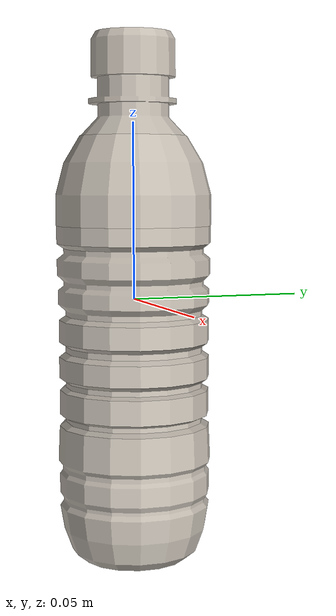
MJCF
<mujoco model="bottled_water_12">
  <asset>
    <mesh file="visual/model_normalized_0.obj" name="model_normalized_0_vis" scale="0.15 0.15 0.15" refquat="1.0 0.0 0.0 0.0"/>
    <mesh file="visual/model_normalized_1.obj" name="model_normalized_1_vis" scale="0.15 0.15 0.15" refquat="1.0 0.0 0.0 0.0"/>
    <mesh file="visual/model_normalized_2.obj" name="model_normalized_2_vis" scale="0.15 0.15 0.15" refquat="1.0 0.0 0.0 0.0"/>
    <mesh file="visual/model_normalized_3.obj" name="model_normalized_3_vis" scale="0.15 0.15 0.15" refquat="1.0 0.0 0.0 0.0"/>
    <mesh file="collision/model_normalized_collision_22.obj" name="model_normalized_collision_22._coll" scale="0.15 0.15 0.15" refquat="1.0 0.0 0.0 0.0"/>
    <mesh file="collision/model_normalized_collision_23.obj" name="model_normalized_collision_23._coll" scale="0.15 0.15 0.15" refquat="1.0 0.0 0.0 0.0"/>
    <mesh file="collision/model_normalized_collision_21.obj" name="model_normalized_collision_21._coll" scale="0.15 0.15 0.15" refquat="1.0 0.0 0.0 0.0"/>
    <mesh file="collision/model_normalized_collision_20.obj" name="model_normalized_collision_20._coll" scale="0.15 0.15 0.15" refquat="1.0 0.0 0.0 0.0"/>
    <mesh file="collision/model_normalized_collision_24.obj" name="model_normalized_collision_24._coll" scale="0.15 0.15 0.15" refquat="1.0 0.0 0.0 0.0"/>
    <mesh file="collision/model_normalized_collision_30.obj" name="model_normalized_collision_30._coll" scale="0.15 0.15 0.15" refquat="1.0 0.0 0.0 0.0"/>
    <mesh file="collision/model_normalized_collision_18.obj" name="model_normalized_collision_18._coll" scale="0.15 0.15 0.15" refquat="1.0 0.0 0.0 0.0"/>
    <mesh file="collision/model_normalized_collision_19.obj" name="model_normalized_collision_19._coll" scale="0.15 0.15 0.15" refquat="1.0 0.0 0.0 0.0"/>
    <mesh file="collision/model_normalized_collision_31.obj" name="model_normalized_collision_31._coll" scale="0.15 0.15 0.15" refquat="1.0 0.0 0.0 0.0"/>
    <mesh file="collision/model_normalized_collision_25.obj" name="model_normalized_collision_25._coll" scale="0.15 0.15 0.15" refquat="1.0 0.0 0.0 0.0"/>
    <mesh file="collision/model_normalized_collision_27.obj" name="model_normalized_collision_27._coll" scale="0.15 0.15 0.15" refquat="1.0 0.0 0.0 0.0"/>
    <mesh file="collision/model_normalized_collision_26.obj" name="model_normalized_collision_26._coll" scale="0.15 0.15 0.15" refquat="1.0 0.0 0.0 0.0"/>
    <mesh file="collision/model_normalized_collision_9.obj" name="model_normalized_collision_9._coll" scale="0.15 0.15 0.15" refquat="1.0 0.0 0.0 0.0"/>
    <mesh file="collision/model_normalized_collision_8.obj" name="model_normalized_collision_8._coll" scale="0.15 0.15 0.15" refquat="1.0 0.0 0.0 0.0"/>
    <mesh file="collision/model_normalized_collision_6.obj" name="model_normalized_collision_6._coll" scale="0.15 0.15 0.15" refquat="1.0 0.0 0.0 0.0"/>
    <mesh file="collision/model_normalized_collision_7.obj" name="model_normalized_collision_7._coll" scale="0.15 0.15 0.15" refquat="1.0 0.0 0.0 0.0"/>
    <mesh file="collision/model_normalized_collision_5.obj" name="model_normalized_collision_5._coll" scale="0.15 0.15 0.15" refquat="1.0 0.0 0.0 0.0"/>
    <mesh file="collision/model_normalized_collision_4.obj" name="model_normalized_collision_4._coll" scale="0.15 0.15 0.15" refquat="1.0 0.0 0.0 0.0"/>
    <mesh file="collision/model_normalized_collision_0.obj" name="model_normalized_collision_0._coll" scale="0.15 0.15 0.15" refquat="1.0 0.0 0.0 0.0"/>
    <mesh file="collision/model_normalized_collision_1.obj" name="model_normalized_collision_1._coll" scale="0.15 0.15 0.15" refquat="1.0 0.0 0.0 0.0"/>
    <mesh file="collision/model_normalized_collision_3.obj" name="model_normalized_collision_3._coll" scale="0.15 0.15 0.15" refquat="1.0 0.0 0.0 0.0"/>
    <mesh file="collision/model_normalized_collision_2.obj" name="model_normalized_collision_2._coll" scale="0.15 0.15 0.15" refquat="1.0 0.0 0.0 0.0"/>
    <mesh file="collision/model_normalized_collision_17.obj" name="model_normalized_collision_17._coll" scale="0.15 0.15 0.15" refquat="1.0 0.0 0.0 0.0"/>
    <mesh file="collision/model_normalized_collision_16.obj" name="model_normalized_collision_16._coll" scale="0.15 0.15 0.15" refquat="1.0 0.0 0.0 0.0"/>
    <mesh file="collision/model_normalized_collision_28.obj" name="model_normalized_collision_28._coll" scale="0.15 0.15 0.15" refquat="1.0 0.0 0.0 0.0"/>
    <mesh file="collision/model_normalized_collision_14.obj" name="model_normalized_collision_14._coll" scale="0.15 0.15 0.15" refquat="1.0 0.0 0.0 0.0"/>
    <mesh file="collision/model_normalized_collision_15.obj" name="model_normalized_collision_15._coll" scale="0.15 0.15 0.15" refquat="1.0 0.0 0.0 0.0"/>
    <mesh file="collision/model_normalized_collision_29.obj" name="model_normalized_collision_29._coll" scale="0.15 0.15 0.15" refquat="1.0 0.0 0.0 0.0"/>
    <mesh file="collision/model_normalized_collision_11.obj" name="model_normalized_collision_11._coll" scale="0.15 0.15 0.15" refquat="1.0 0.0 0.0 0.0"/>
    <mesh file="collision/model_normalized_collision_10.obj" name="model_normalized_collision_10._coll" scale="0.15 0.15 0.15" refquat="1.0 0.0 0.0 0.0"/>
    <mesh file="collision/model_normalized_collision_12.obj" name="model_normalized_collision_12._coll" scale="0.15 0.15 0.15" refquat="1.0 0.0 0.0 0.0"/>
    <mesh file="collision/model_normalized_collision_13.obj" name="model_normalized_collision_13._coll" scale="0.15 0.15 0.15" refquat="1.0 0.0 0.0 0.0"/>
    <texture type="2d" name="image0" file="visual/image0.png"/>
    <material name="Material_141" texture="image0" specular="0.5" shininess="0.359999993"/>
    <material name="lable" texture="image0" specular="0.5" shininess="0.359999993"/>
    <material name="material.007" texture="image0" specular="0.5" shininess="0.359999993"/>
    <material name="water.001" texture="image0" specular="0.5" shininess="0.359999993"/>
  </asset>
  <worldbody>
  <body>
      <body name="object">
        <geom solimp="0.998 0.998 0.001" solref="0.001 1" density="100" friction="0.95 0.3 0.1" type="mesh" mesh="model_normalized_0_vis" conaffinity="0" contype="0" group="1" material="lable"/>
        <geom solimp="0.998 0.998 0.001" solref="0.001 1" density="100" friction="0.95 0.3 0.1" type="mesh" mesh="model_normalized_1_vis" conaffinity="0" contype="0" group="1" material="water.001"/>
        <geom solimp="0.998 0.998 0.001" solref="0.001 1" density="100" friction="0.95 0.3 0.1" type="mesh" mesh="model_normalized_2_vis" conaffinity="0" contype="0" group="1" material="Material_141"/>
        <geom solimp="0.998 0.998 0.001" solref="0.001 1" density="100" friction="0.95 0.3 0.1" type="mesh" mesh="model_normalized_3_vis" conaffinity="0" contype="0" group="1" material="material.007"/>
        <geom solimp="0.998 0.998 0.001" solref="0.001 1" density="100" friction="0.95 0.3 0.1" type="mesh" mesh="model_normalized_collision_22._coll" group="0" rgba="0.8 0.8 0.8 0.0"/>
        <geom solimp="0.998 0.998 0.001" solref="0.001 1" density="100" friction="0.95 0.3 0.1" type="mesh" mesh="model_normalized_collision_23._coll" group="0" rgba="0.8 0.8 0.8 0.0"/>
        <geom solimp="0.998 0.998 0.001" solref="0.001 1" density="100" friction="0.95 0.3 0.1" type="mesh" mesh="model_normalized_collision_21._coll" group="0" rgba="0.8 0.8 0.8 0.0"/>
        <geom solimp="0.998 0.998 0.001" solref="0.001 1" density="100" friction="0.95 0.3 0.1" type="mesh" mesh="model_normalized_collision_20._coll" group="0" rgba="0.8 0.8 0.8 0.0"/>
        <geom solimp="0.998 0.998 0.001" solref="0.001 1" density="100" friction="0.95 0.3 0.1" type="mesh" mesh="model_normalized_collision_24._coll" group="0" rgba="0.8 0.8 0.8 0.0"/>
        <geom solimp="0.998 0.998 0.001" solref="0.001 1" density="100" friction="0.95 0.3 0.1" type="mesh" mesh="model_normalized_collision_30._coll" group="0" rgba="0.8 0.8 0.8 0.0"/>
        <geom solimp="0.998 0.998 0.001" solref="0.001 1" density="100" friction="0.95 0.3 0.1" type="mesh" mesh="model_normalized_collision_18._coll" group="0" rgba="0.8 0.8 0.8 0.0"/>
        <geom solimp="0.998 0.998 0.001" solref="0.001 1" density="100" friction="0.95 0.3 0.1" type="mesh" mesh="model_normalized_collision_19._coll" group="0" rgba="0.8 0.8 0.8 0.0"/>
        <geom solimp="0.998 0.998 0.001" solref="0.001 1" density="100" friction="0.95 0.3 0.1" type="mesh" mesh="model_normalized_collision_31._coll" group="0" rgba="0.8 0.8 0.8 0.0"/>
        <geom solimp="0.998 0.998 0.001" solref="0.001 1" density="100" friction="0.95 0.3 0.1" type="mesh" mesh="model_normalized_collision_25._coll" group="0" rgba="0.8 0.8 0.8 0.0"/>
        <geom solimp="0.998 0.998 0.001" solref="0.001 1" density="100" friction="0.95 0.3 0.1" type="mesh" mesh="model_normalized_collision_27._coll" group="0" rgba="0.8 0.8 0.8 0.0"/>
        <geom solimp="0.998 0.998 0.001" solref="0.001 1" density="100" friction="0.95 0.3 0.1" type="mesh" mesh="model_normalized_collision_26._coll" group="0" rgba="0.8 0.8 0.8 0.0"/>
        <geom solimp="0.998 0.998 0.001" solref="0.001 1" density="100" friction="0.95 0.3 0.1" type="mesh" mesh="model_normalized_collision_9._coll" group="0" rgba="0.8 0.8 0.8 0.0"/>
        <geom solimp="0.998 0.998 0.001" solref="0.001 1" density="100" friction="0.95 0.3 0.1" type="mesh" mesh="model_normalized_collision_8._coll" group="0" rgba="0.8 0.8 0.8 0.0"/>
        <geom solimp="0.998 0.998 0.001" solref="0.001 1" density="100" friction="0.95 0.3 0.1" type="mesh" mesh="model_normalized_collision_6._coll" group="0" rgba="0.8 0.8 0.8 0.0"/>
        <geom solimp="0.998 0.998 0.001" solref="0.001 1" density="100" friction="0.95 0.3 0.1" type="mesh" mesh="model_normalized_collision_7._coll" group="0" rgba="0.8 0.8 0.8 0.0"/>
        <geom solimp="0.998 0.998 0.001" solref="0.001 1" density="100" friction="0.95 0.3 0.1" type="mesh" mesh="model_normalized_collision_5._coll" group="0" rgba="0.8 0.8 0.8 0.0"/>
        <geom solimp="0.998 0.998 0.001" solref="0.001 1" density="100" friction="0.95 0.3 0.1" type="mesh" mesh="model_normalized_collision_4._coll" group="0" rgba="0.8 0.8 0.8 0.0"/>
        <geom solimp="0.998 0.998 0.001" solref="0.001 1" density="100" friction="0.95 0.3 0.1" type="mesh" mesh="model_normalized_collision_0._coll" group="0" rgba="0.8 0.8 0.8 0.0"/>
        <geom solimp="0.998 0.998 0.001" solref="0.001 1" density="100" friction="0.95 0.3 0.1" type="mesh" mesh="model_normalized_collision_1._coll" group="0" rgba="0.8 0.8 0.8 0.0"/>
        <geom solimp="0.998 0.998 0.001" solref="0.001 1" density="100" friction="0.95 0.3 0.1" type="mesh" mesh="model_normalized_collision_3._coll" group="0" rgba="0.8 0.8 0.8 0.0"/>
        <geom solimp="0.998 0.998 0.001" solref="0.001 1" density="100" friction="0.95 0.3 0.1" type="mesh" mesh="model_normalized_collision_2._coll" group="0" rgba="0.8 0.8 0.8 0.0"/>
        <geom solimp="0.998 0.998 0.001" solref="0.001 1" density="100" friction="0.95 0.3 0.1" type="mesh" mesh="model_normalized_collision_17._coll" group="0" rgba="0.8 0.8 0.8 0.0"/>
        <geom solimp="0.998 0.998 0.001" solref="0.001 1" density="100" friction="0.95 0.3 0.1" type="mesh" mesh="model_normalized_collision_16._coll" group="0" rgba="0.8 0.8 0.8 0.0"/>
        <geom solimp="0.998 0.998 0.001" solref="0.001 1" density="100" friction="0.95 0.3 0.1" type="mesh" mesh="model_normalized_collision_28._coll" group="0" rgba="0.8 0.8 0.8 0.0"/>
        <geom solimp="0.998 0.998 0.001" solref="0.001 1" density="100" friction="0.95 0.3 0.1" type="mesh" mesh="model_normalized_collision_14._coll" group="0" rgba="0.8 0.8 0.8 0.0"/>
        <geom solimp="0.998 0.998 0.001" solref="0.001 1" density="100" friction="0.95 0.3 0.1" type="mesh" mesh="model_normalized_collision_15._coll" group="0" rgba="0.8 0.8 0.8 0.0"/>
        <geom solimp="0.998 0.998 0.001" solref="0.001 1" density="100" friction="0.95 0.3 0.1" type="mesh" mesh="model_normalized_collision_29._coll" group="0" rgba="0.8 0.8 0.8 0.0"/>
        <geom solimp="0.998 0.998 0.001" solref="0.001 1" density="100" friction="0.95 0.3 0.1" type="mesh" mesh="model_normalized_collision_11._coll" group="0" rgba="0.8 0.8 0.8 0.0"/>
        <geom solimp="0.998 0.998 0.001" solref="0.001 1" density="100" friction="0.95 0.3 0.1" type="mesh" mesh="model_normalized_collision_10._coll" group="0" rgba="0.8 0.8 0.8 0.0"/>
        <geom solimp="0.998 0.998 0.001" solref="0.001 1" density="100" friction="0.95 0.3 0.1" type="mesh" mesh="model_normalized_collision_12._coll" group="0" rgba="0.8 0.8 0.8 0.0"/>
        <geom solimp="0.998 0.998 0.001" solref="0.001 1" density="100" friction="0.95 0.3 0.1" type="mesh" mesh="model_normalized_collision_13._coll" group="0" rgba="0.8 0.8 0.8 0.0"/>
      </body>
      <site rgba="0 0 0 0" size="0.005" pos="0.00021110924999999877 -0.00017307675000000007 -0.0747336135" name="bottom_site"/>
      <site rgba="0 0 0 0" size="0.005" pos="0.00021110924999999877 -0.00017307675000000007 0.07469667149999999" name="top_site"/>
      <site rgba="0 0 0 0" size="0.005" pos="0.021501847499999997 0.0210480465 -1.847099999999907e-05" name="horizontal_radius_site"/>
    </body>
    </worldbody>
</mujoco>
